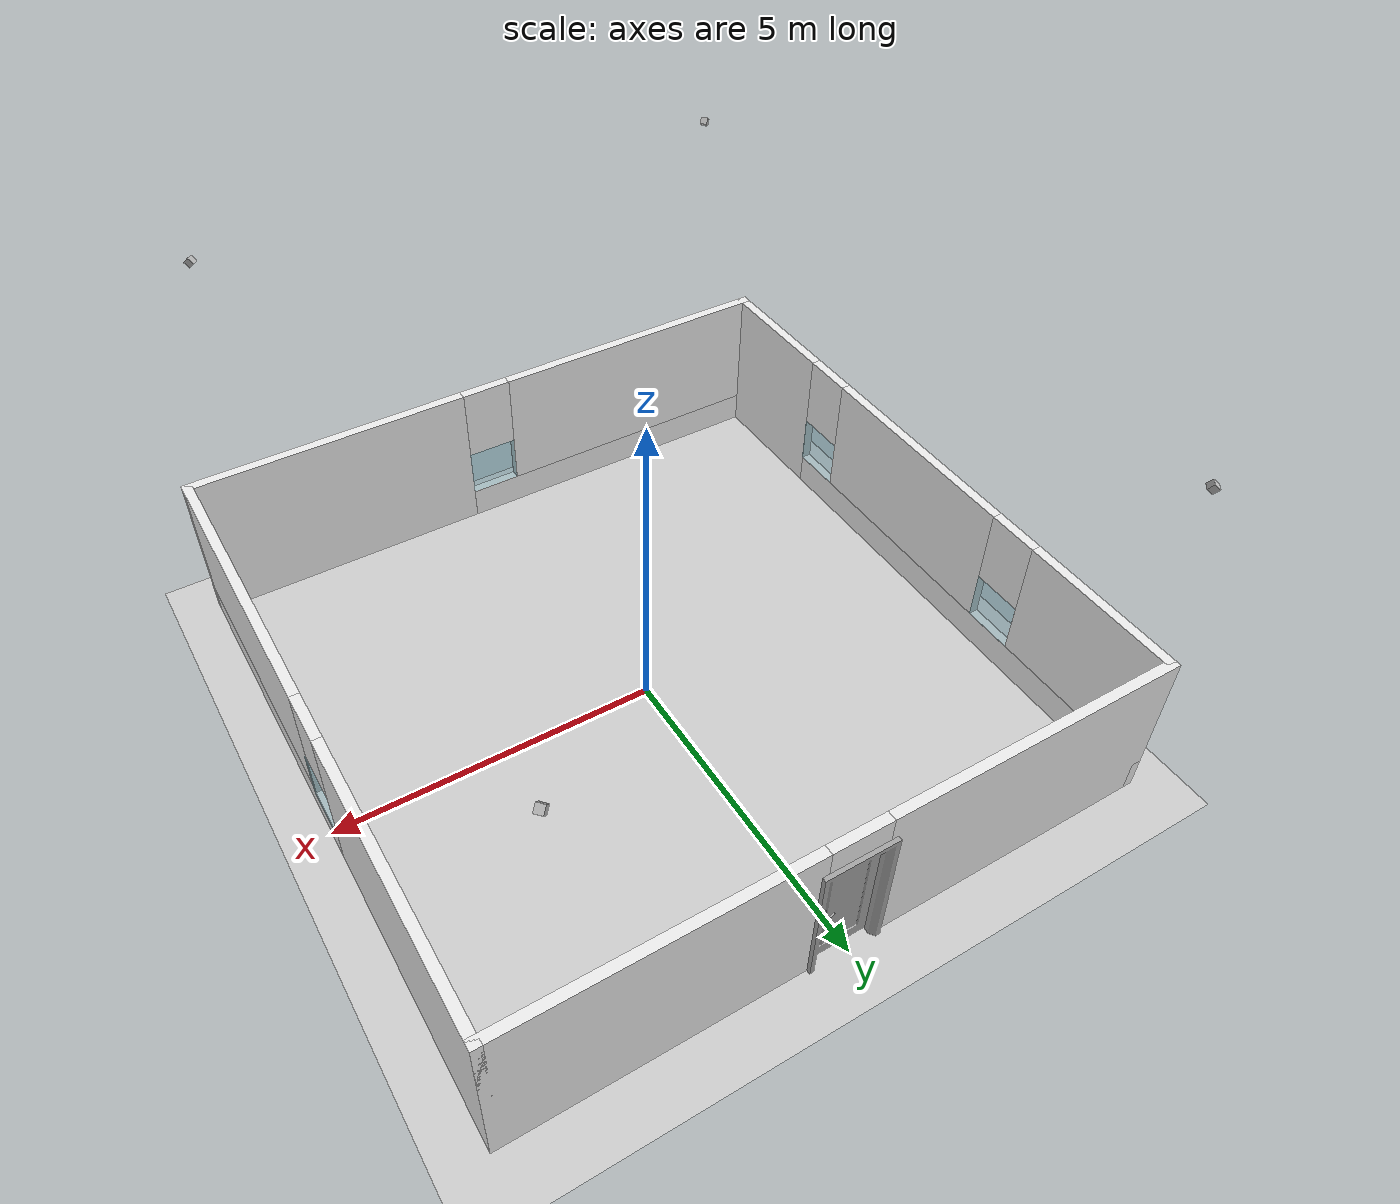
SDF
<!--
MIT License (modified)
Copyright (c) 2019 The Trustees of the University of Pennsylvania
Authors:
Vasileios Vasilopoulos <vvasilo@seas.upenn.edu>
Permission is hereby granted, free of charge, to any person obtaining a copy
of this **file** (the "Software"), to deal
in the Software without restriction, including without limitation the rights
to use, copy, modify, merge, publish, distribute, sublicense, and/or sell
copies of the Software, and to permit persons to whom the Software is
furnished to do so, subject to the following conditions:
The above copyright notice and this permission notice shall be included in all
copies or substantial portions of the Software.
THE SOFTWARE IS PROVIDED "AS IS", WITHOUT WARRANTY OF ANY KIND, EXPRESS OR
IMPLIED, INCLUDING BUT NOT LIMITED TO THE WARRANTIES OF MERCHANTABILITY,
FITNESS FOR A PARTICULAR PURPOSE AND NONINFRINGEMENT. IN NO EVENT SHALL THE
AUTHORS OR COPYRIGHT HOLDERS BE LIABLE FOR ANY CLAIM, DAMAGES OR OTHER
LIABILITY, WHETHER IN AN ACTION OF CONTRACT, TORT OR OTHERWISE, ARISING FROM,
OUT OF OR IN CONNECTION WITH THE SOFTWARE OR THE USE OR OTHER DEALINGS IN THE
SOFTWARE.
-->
<sdf version="1.6">
 <world name="default">
  <light name="sun" type="directional">
   <pose>0 0 10 0 -0 0</pose>
   <diffuse>0.8 0.8 0.8 1</diffuse>
   <specular>0.1 0.1 0.1 1</specular>
   <attenuation>
    <range>1000</range>
    <constant>0.9</constant>
    <linear>0.01</linear>
    <quadratic>0.001</quadratic>
   </attenuation>
   <direction>-0.5 0.5 -1</direction>
  </light>
  <model name="ground_plane">
   <static>1</static>
   <link name="link">
    <collision name="collision">
     <geometry><plane><normal>0 0 1</normal><size>100 100</size></plane></geometry>
     <surface><friction><ode><mu>100</mu><mu2>50</mu2></ode></friction></surface>
    </collision>
    <visual name="visual">
     <cast_shadows>0</cast_shadows>
     <geometry><plane><normal>0 0 1</normal><size>100 100</size></plane></geometry>
     <material>
      <script><uri>file://media/materials/scripts/gazebo.material</uri><name>Gazebo/Grey</name></script>
     </material>
    </visual>
   </link>
  </model>
  <gravity>0 0 -9.81</gravity>
  <magnetic_field>6e-06 2.3e-05 -4.2e-05</magnetic_field>
  <atmosphere type="adiabatic"/>
  <physics name="default_physics" default="0" type="ode">
   <max_step_size>0.0001</max_step_size>
   <real_time_factor>1</real_time_factor>
   <real_time_update_rate>10000</real_time_update_rate>
  </physics>
  <scene><ambient>0.4 0.4 0.4 1</ambient><background>0.7 0.7 0.7 1</background><shadows>1</shadows></scene>
  <spherical_coordinates>
   <surface_model>EARTH_WGS84</surface_model>
   <latitude_deg>0</latitude_deg>
   <longitude_deg>0</longitude_deg>
   <elevation>0</elevation>
   <heading_deg>0</heading_deg>
  </spherical_coordinates>
  <model name="office_small_1">
   <model name="door_3d">
    <link name="link_1">
     <visual name="visual">
      <geometry><mesh><uri>model://door_3d/meshes/door_v2_door.dae</uri><scale>1 1 1</scale></mesh></geometry>
      <material>
       <script>
        <uri>model://door_3d/materials/scripts</uri>
        <uri>model://door_3d/materials/textures</uri>
        <name>door_3d</name>
       </script>
      </material>
     </visual>
     <collision name="collision">
      <geometry><mesh><uri>model://door_3d/meshes/door_v2_door.dae</uri><scale>1 1 1</scale></mesh></geometry>
     </collision>
    </link>
    <link name="link_2">
     <visual name="visual">
      <geometry><mesh><uri>model://door_3d/meshes/door_v2_handle.dae</uri><scale>1 1 1</scale></mesh></geometry>
      <material>
       <script>
        <uri>model://door_3d/materials/scripts</uri>
        <uri>model://door_3d/materials/textures</uri>
        <name>door_handle</name>
       </script>
      </material>
     </visual>
     <collision name="collision">
      <geometry><mesh><uri>model://door_3d/meshes/door_v2_handle.dae</uri><scale>1 1 1</scale></mesh></geometry>
     </collision>
    </link>
    <static>1</static>
    <pose>0.856135 4.98035 0 0 -0 0</pose>
   </model>
   <model name="office_small">
    <pose>0.796663 0.043102 0 0 -0 0</pose>
    <link name="Wall_2">
     <pose>0 4.925 0 0 -0 0</pose>
     <visual name="Wall_2_Visual_0">
      <pose>-2.69024 0 1.25 0 -0 0</pose>
      <geometry><box><size>4.61951 0.15 2.5</size></box></geometry>
      <material>
       <script>
        <uri>model://office_small/materials/scripts</uri>
        <uri>model://office_small/materials/textures</uri>
        <name>wall_white</name>
       </script>
      </material>
     </visual>
     <collision name="Wall_2_Collision_0">
      <geometry><box><size>4.61951 0.15 2.5</size></box></geometry>
      <pose>-2.69024 0 1.25 0 -0 0</pose>
     </collision>
     <visual name="Wall_2_Visual_1">
      <pose>2.75976 0 1.25 0 -0 0</pose>
      <geometry><box><size>4.48049 0.15 2.5</size></box></geometry>
      <material>
       <script>
        <uri>model://office_small/materials/scripts</uri>
        <uri>model://office_small/materials/textures</uri>
        <name>wall_white</name>
       </script>
      </material>
     </visual>
     <collision name="Wall_2_Collision_1">
      <geometry><box><size>4.48049 0.15 2.5</size></box></geometry>
      <pose>2.75976 0 1.25 0 -0 0</pose>
     </collision>
     <visual name="Wall_2_Visual_2">
      <pose>0.06951 0 2.25 0 -0 0</pose>
      <geometry><box><size>0.9 0.15 0.5</size></box></geometry>
      <material>
       <script>
        <uri>model://office_small/materials/scripts</uri>
        <uri>model://office_small/materials/textures</uri>
        <name>wall_white</name>
       </script>
      </material>
     </visual>
     <collision name="Wall_2_Collision_2">
      <geometry><box><size>0.9 0.15 0.5</size></box></geometry>
      <pose>0.06951 0 2.25 0 -0 0</pose>
     </collision>
    </link>
    <link name="Wall_3">
     <pose>4.925 0 0 0 0 -1.5708</pose>
     <visual name="Wall_3_Visual_0">
      <pose>-2.74228 0 1.25 0 -0 0</pose>
      <geometry><box><size>4.51544 0.15 2.5</size></box></geometry>
      <material>
       <script>
        <uri>model://office_small/materials/scripts</uri>
        <uri>model://office_small/materials/textures</uri>
        <name>wall_white</name>
       </script>
      </material>
     </visual>
     <collision name="Wall_3_Collision_0">
      <geometry><box><size>4.51544 0.15 2.5</size></box></geometry>
      <pose>-2.74228 0 1.25 0 -0 0</pose>
     </collision>
     <visual name="Wall_3_Visual_1">
      <pose>2.25772 0 0.25 0 -0 0</pose>
      <geometry><box><size>5.48456 0.15 0.5</size></box></geometry>
      <material>
       <script>
        <uri>model://office_small/materials/scripts</uri>
        <uri>model://office_small/materials/textures</uri>
        <name>wall_white</name>
       </script>
      </material>
     </visual>
     <collision name="Wall_3_Collision_1">
      <geometry><box><size>5.48456 0.15 0.5</size></box></geometry>
      <pose>2.25772 0 0.25 0 -0 0</pose>
     </collision>
     <visual name="Wall_3_Visual_2">
      <pose>2.65772 0 1.5 0 -0 0</pose>
      <geometry><box><size>4.68456 0.15 2</size></box></geometry>
      <material>
       <script>
        <uri>model://office_small/materials/scripts</uri>
        <uri>model://office_small/materials/textures</uri>
        <name>wall_white</name>
       </script>
      </material>
     </visual>
     <collision name="Wall_3_Collision_2">
      <geometry><box><size>4.68456 0.15 2</size></box></geometry>
      <pose>2.65772 0 1.5 0 -0 0</pose>
     </collision>
     <visual name="Wall_3_Visual_3">
      <pose>-0.084559 0 1.9 0 -0 0</pose>
      <geometry><box><size>0.8 0.15 1.2</size></box></geometry>
      <material>
       <script>
        <uri>model://office_small/materials/scripts</uri>
        <uri>model://office_small/materials/textures</uri>
        <name>wall_white</name>
       </script>
      </material>
     </visual>
     <collision name="Wall_3_Collision_3">
      <geometry><box><size>0.8 0.15 1.2</size></box></geometry>
      <pose>-0.084559 0 1.9 0 -0 0</pose>
     </collision>
    </link>
    <link name="Wall_4">
     <pose>0 -4.925 0 0 -0 3.14159</pose>
     <visual name="Wall_4_Visual_0">
      <pose>-2.74632 0 1.25 0 -0 0</pose>
      <geometry><box><size>4.50736 0.15 2.5</size></box></geometry>
      <material>
       <script>
        <uri>model://office_small/materials/scripts</uri>
        <uri>model://office_small/materials/textures</uri>
        <name>wall_white</name>
       </script>
      </material>
     </visual>
     <collision name="Wall_4_Collision_0">
      <geometry><box><size>4.50736 0.15 2.5</size></box></geometry>
      <pose>-2.74632 0 1.25 0 -0 0</pose>
     </collision>
     <visual name="Wall_4_Visual_1">
      <pose>2.25368 0 0.25 0 -0 0</pose>
      <geometry><box><size>5.49264 0.15 0.5</size></box></geometry>
      <material>
       <script>
        <uri>model://office_small/materials/scripts</uri>
        <uri>model://office_small/materials/textures</uri>
        <name>wall_white</name>
       </script>
      </material>
     </visual>
     <collision name="Wall_4_Collision_1">
      <geometry><box><size>5.49264 0.15 0.5</size></box></geometry>
      <pose>2.25368 0 0.25 0 -0 0</pose>
     </collision>
     <visual name="Wall_4_Visual_2">
      <pose>2.65368 0 1.5 0 -0 0</pose>
      <geometry><box><size>4.69264 0.15 2</size></box></geometry>
      <material>
       <script>
        <uri>model://office_small/materials/scripts</uri>
        <uri>model://office_small/materials/textures</uri>
        <name>wall_white</name>
       </script>
      </material>
     </visual>
     <collision name="Wall_4_Collision_2">
      <geometry><box><size>4.69264 0.15 2</size></box></geometry>
      <pose>2.65368 0 1.5 0 -0 0</pose>
     </collision>
     <visual name="Wall_4_Visual_3">
      <pose>-0.09264 0 1.9 0 -0 0</pose>
      <geometry><box><size>0.8 0.15 1.2</size></box></geometry>
      <material>
       <script>
        <uri>model://office_small/materials/scripts</uri>
        <uri>model://office_small/materials/textures</uri>
        <name>wall_white</name>
       </script>
      </material>
     </visual>
     <collision name="Wall_4_Collision_3">
      <geometry><box><size>0.8 0.15 1.2</size></box></geometry>
      <pose>-0.09264 0 1.9 0 -0 0</pose>
     </collision>
    </link>
    <link name="Wall_5">
     <pose>-4.925 0 0 0 -0 1.5708</pose>
     <visual name="Wall_5_Visual_0">
      <pose>-3.88364 0 1.25 0 -0 0</pose>
      <geometry><box><size>2.23271 0.15 2.5</size></box></geometry>
      <material>
       <script>
        <uri>model://office_small/materials/scripts</uri>
        <uri>model://office_small/materials/textures</uri>
        <name>wall_white</name>
       </script>
      </material>
     </visual>
     <collision name="Wall_5_Collision_0">
      <geometry><box><size>2.23271 0.15 2.5</size></box></geometry>
      <pose>-3.88364 0 1.25 0 -0 0</pose>
     </collision>
     <visual name="Wall_5_Visual_1">
      <pose>1.11636 0 0.25 0 -0 0</pose>
      <geometry><box><size>7.76729 0.15 0.5</size></box></geometry>
      <material>
       <script>
        <uri>model://office_small/materials/scripts</uri>
        <uri>model://office_small/materials/textures</uri>
        <name>wall_white</name>
       </script>
      </material>
     </visual>
     <collision name="Wall_5_Collision_1">
      <geometry><box><size>7.76729 0.15 0.5</size></box></geometry>
      <pose>1.11636 0 0.25 0 -0 0</pose>
     </collision>
     <visual name="Wall_5_Visual_2">
      <pose>-0.169878 0 1.5 0 -0 0</pose>
      <geometry><box><size>3.59482 0.15 2</size></box></geometry>
      <material>
       <script>
        <uri>model://office_small/materials/scripts</uri>
        <uri>model://office_small/materials/textures</uri>
        <name>wall_white</name>
       </script>
      </material>
     </visual>
     <collision name="Wall_5_Collision_2">
      <geometry><box><size>3.59482 0.15 2</size></box></geometry>
      <pose>-0.169878 0 1.5 0 -0 0</pose>
     </collision>
     <visual name="Wall_5_Visual_3">
      <pose>3.71376 0 1.5 0 -0 0</pose>
      <geometry><box><size>2.57247 0.15 2</size></box></geometry>
      <material>
       <script>
        <uri>model://office_small/materials/scripts</uri>
        <uri>model://office_small/materials/textures</uri>
        <name>wall_white</name>
       </script>
      </material>
     </visual>
     <collision name="Wall_5_Collision_3">
      <geometry><box><size>2.57247 0.15 2</size></box></geometry>
      <pose>3.71376 0 1.5 0 -0 0</pose>
     </collision>
     <visual name="Wall_5_Visual_4">
      <pose>-2.36729 0 1.9 0 -0 0</pose>
      <geometry><box><size>0.8 0.15 1.2</size></box></geometry>
      <material>
       <script>
        <uri>model://office_small/materials/scripts</uri>
        <uri>model://office_small/materials/textures</uri>
        <name>wall_white</name>
       </script>
      </material>
     </visual>
     <collision name="Wall_5_Collision_4">
      <geometry><box><size>0.8 0.15 1.2</size></box></geometry>
      <pose>-2.36729 0 1.9 0 -0 0</pose>
     </collision>
     <visual name="Wall_5_Visual_5">
      <pose>2.02753 0 1.9 0 -0 0</pose>
      <geometry><box><size>0.8 0.15 1.2</size></box></geometry>
      <material>
       <script>
        <uri>model://office_small/materials/scripts</uri>
        <uri>model://office_small/materials/textures</uri>
        <name>wall_white</name>
       </script>
      </material>
     </visual>
     <collision name="Wall_5_Collision_5">
      <geometry><box><size>0.8 0.15 1.2</size></box></geometry>
      <pose>2.02753 0 1.9 0 -0 0</pose>
     </collision>
    </link>
    <static>1</static>
   </model>
   <model name="window">
    <link name="link_2">
     <visual name="visual">
      <pose>0 0 0.9 0 -0 0</pose>
      <geometry><box><size>0.8 0.15 0.8</size></box></geometry>
      <material>
       <lighting>1</lighting>
       <ambient>0.1 0.5 0.6 1</ambient>
       <diffuse>0.1 0.5 0.6 1</diffuse>
       <specular>0.01 0.01 0.01 1</specular>
       <emissive>0 0 0 1</emissive>
      </material>
      <transparency>0.7</transparency>
     </visual>
     <collision name="collision">
      <pose>0 0 0.9 0 -0 0</pose>
      <geometry><box><size>0.8 0.15 0.8</size></box></geometry>
     </collision>
    </link>
    <static>1</static>
    <pose>-4.12651 2.07152 0 0 -0 1.5706</pose>
   </model>
   <model name="window_0">
    <link name="link_2">
     <visual name="visual">
      <pose>0 0 0.9 0 -0 0</pose>
      <geometry><box><size>0.8 0.15 0.8</size></box></geometry>
      <material>
       <lighting>1</lighting>
       <ambient>0.1 0.5 0.6 1</ambient>
       <diffuse>0.1 0.5 0.6 1</diffuse>
       <specular>0.01 0.01 0.01 1</specular>
       <emissive>0 0 0 1</emissive>
      </material>
      <transparency>0.7</transparency>
     </visual>
     <collision name="collision">
      <pose>0 0 0.9 0 -0 0</pose>
      <geometry><box><size>0.8 0.15 0.8</size></box></geometry>
     </collision>
    </link>
    <static>1</static>
    <pose>-4.12726 -2.32854 0 0 -0 1.57</pose>
   </model>
   <model name="window_1">
    <link name="link_2">
     <visual name="visual">
      <pose>0 0 0.9 0 -0 0</pose>
      <geometry><box><size>0.8 0.15 0.8</size></box></geometry>
      <material>
       <lighting>1</lighting>
       <ambient>0.1 0.5 0.6 1</ambient>
       <diffuse>0.1 0.5 0.6 1</diffuse>
       <specular>0.01 0.01 0.01 1</specular>
       <emissive>0 0 0 1</emissive>
      </material>
      <transparency>0.7</transparency>
     </visual>
     <collision name="collision">
      <pose>0 0 0.9 0 -0 0</pose>
      <geometry><box><size>0.8 0.15 0.8</size></box></geometry>
     </collision>
    </link>
    <static>1</static>
    <pose>0.875059 -4.88342 0 0 -0 0</pose>
   </model>
   <model name="window_2">
    <link name="link_2">
     <visual name="visual">
      <pose>0 0 0.9 0 -0 0</pose>
      <geometry><box><size>0.8 0.15 0.8</size></box></geometry>
      <material>
       <lighting>1</lighting>
       <ambient>0.1 0.5 0.6 1</ambient>
       <diffuse>0.1 0.5 0.6 1</diffuse>
       <specular>0.01 0.01 0.01 1</specular>
       <emissive>0 0 0 1</emissive>
      </material>
      <transparency>0.7</transparency>
     </visual>
     <collision name="collision">
      <pose>0 0 0.9 0 -0 0</pose>
      <geometry><box><size>0.8 0.15 0.8</size></box></geometry>
     </collision>
    </link>
    <static>1</static>
    <pose>5.73592 0.126978 0 0 -0 1.57</pose>
   </model>
   <static>0</static>
   <pose>-0.806453 -0.104884 0 0 -0 0</pose>
  </model>
  <joint name="tag_table_joint" type="fixed">
   <child>table_tag_1::link</child>
   <parent>table_conference_2::link_3</parent>
  </joint>
  <joint name="tag_table_joint" type="fixed">
   <child>table_tag_2::link</child>
   <parent>table_conference_2::link_3</parent>
  </joint>
  <model name="camera1">
   <static>true</static>
   <pose>-4 -5 6 0 0.86 0.72</pose>
   <link name="link">
    <visual name="visual">
     <cast_shadows>0</cast_shadows>
     <geometry><box><size>0.1 0.1 0.1</size></box></geometry>
    </visual>
    <sensor name="my_camera" type="camera">
     <camera>
      <save enabled="true"><path>/home/kodlab/gazebo_camera_1</path></save>
      <horizontal_fov>1.5</horizontal_fov>
      <image><width>1920</width><height>1080</height></image>
      <clip><near>0.1</near><far>100</far></clip>
     </camera>
     <always_on>1</always_on>
     <update_rate>30</update_rate>
    </sensor>
   </link>
  </model>
  <model name="camera2">
   <static>true</static>
   <pose>4 -5 6 0 0.86 2.42</pose>
   <link name="link">
    <visual name="visual">
     <cast_shadows>0</cast_shadows>
     <geometry><box><size>0.1 0.1 0.1</size></box></geometry>
    </visual>
    <sensor name="my_camera" type="camera">
     <camera>
      <save enabled="true"><path>/home/kodlab/gazebo_camera_2</path></save>
      <horizontal_fov>1.5</horizontal_fov>
      <image><width>1920</width><height>1080</height></image>
      <clip><near>0.1</near><far>100</far></clip>
     </camera>
     <always_on>1</always_on>
     <update_rate>30</update_rate>
    </sensor>
   </link>
  </model>
  <model name="camera3">
   <static>true</static>
   <pose>4 5 6 0 0.86 -2.42</pose>
   <link name="link">
    <visual name="visual">
     <cast_shadows>0</cast_shadows>
     <geometry><box><size>0.1 0.1 0.1</size></box></geometry>
    </visual>
    <sensor name="my_camera" type="camera">
     <camera>
      <save enabled="true"><path>/home/kodlab/gazebo_camera_3</path></save>
      <horizontal_fov>1.5</horizontal_fov>
      <image><width>1920</width><height>1080</height></image>
      <clip><near>0.1</near><far>100</far></clip>
     </camera>
     <always_on>1</always_on>
     <update_rate>30</update_rate>
    </sensor>
   </link>
  </model>
  <model name="camera4">
   <static>true</static>
   <pose>-4 5 6 0 0.86 -0.72</pose>
   <link name="link">
    <visual name="visual">
     <cast_shadows>0</cast_shadows>
     <geometry><box><size>0.1 0.1 0.1</size></box></geometry>
    </visual>
    <sensor name="my_camera" type="camera">
     <camera>
      <save enabled="true"><path>/home/kodlab/gazebo_camera_4</path></save>
      <horizontal_fov>1.5</horizontal_fov>
      <image><width>1920</width><height>1080</height></image>
      <clip><near>0.1</near><far>100</far></clip>
     </camera>
     <always_on>1</always_on>
     <update_rate>30</update_rate>
    </sensor>
   </link>
  </model>
 </world>
</sdf>
